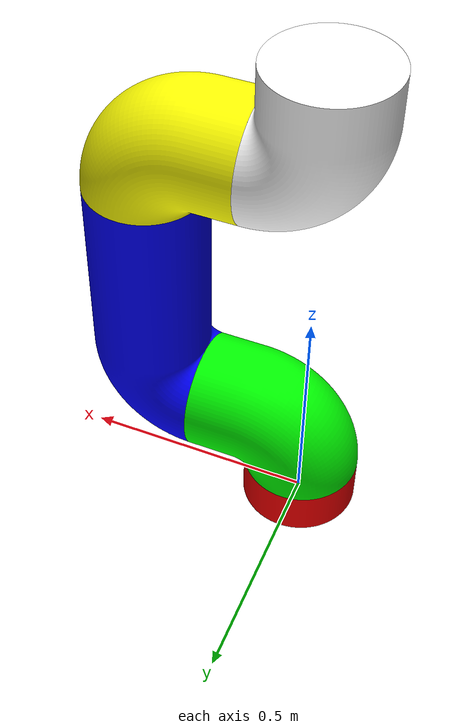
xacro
<?xml version="1.0" ?>
<robot name="URDF_Test" xmlns:xacro="http://www.ros.org/wiki/xacro">

<xacro:include filename="$(find urdf_description)/robot/materials.xacro" />
<xacro:include filename="$(find urdf_description)/robot/URDF_Test.trans" />
<xacro:include filename="$(find urdf_description)/robot/URDF_Test.gazebo" />

<link name='world'>
</link>

<link name="base_link">
  <inertial>
    <origin xyz="2.964491827262478e-17 0.0 0.05000000000000002" rpy="0 0 0"/>
    <mass value="38.53359739168731"/>
    <inertia ixx="0.182633" iyy="0.182633" izz="0.301044" ixy="0.0" iyz="0.0" ixz="0.0"/>
  </inertial>
  <visual>
    <origin xyz="0 0 0" rpy="0 0 0"/>
    <geometry>
      <mesh filename="package://urdf_test_description/meshes/base_link.stl" scale="0.001 0.001 0.001"/>
    </geometry>
    <material name="red"/>
  </visual>
  <collision>
    <origin xyz="0 0 0" rpy="0 0 0"/>
    <geometry>
      <mesh filename="package://urdf_test_description/meshes/base_link.stl" scale="0.001 0.001 0.001"/>
    </geometry>
  </collision>
</link>

<link name="limb1_1">
  <inertial>
    <origin xyz="0.07596584270604206 0.0 0.10808604564797245" rpy="0 0 0"/>
    <mass value="114.19413894300712"/>
    <inertia ixx="0.899018" iyy="1.341251" izz="1.334375" ixy="-0.0" iyz="0.0" ixz="-0.18752"/>
  </inertial>
  <visual>
    <origin xyz="-0.0 -0.0 -0.1" rpy="0 0 0"/>
    <geometry>
      <mesh filename="package://urdf_test_description/meshes/limb1_1.stl" scale="0.001 0.001 0.001"/>
    </geometry>
    <material name="green"/>
  </visual>
  <collision>
    <origin xyz="-0.0 -0.0 -0.1" rpy="0 0 0"/>
    <geometry>
      <mesh filename="package://urdf_test_description/meshes/limb1_1.stl" scale="0.001 0.001 0.001"/>
    </geometry>
  </collision>
</link>

<link name="limb2_1">
  <inertial>
    <origin xyz="0.11659479086873878 -1.988425662600658e-17 0.22639816644090358" rpy="0 0 0"/>
    <mass value="229.79493111806912"/>
    <inertia ixx="7.789902" iyy="7.813213" izz="1.818584" ixy="-0.0" iyz="-0.0" ixz="-0.478076"/>
  </inertial>
  <visual>
    <origin xyz="-0.225 -0.0 -0.225" rpy="0 0 0"/>
    <geometry>
      <mesh filename="package://urdf_test_description/meshes/limb2_1.stl" scale="0.001 0.001 0.001"/>
    </geometry>
    <material name="blue"/>
  </visual>
  <collision>
    <origin xyz="-0.225 -0.0 -0.225" rpy="0 0 0"/>
    <geometry>
      <mesh filename="package://urdf_test_description/meshes/limb2_1.stl" scale="0.001 0.001 0.001"/>
    </geometry>
  </collision>
</link>

<link name="limb3_1">
  <inertial>
    <origin xyz="-0.0759658427060419 8.00268984730937e-17 0.10808604564797264" rpy="0 0 0"/>
    <mass value="114.19413894300706"/>
    <inertia ixx="0.899018" iyy="1.341251" izz="1.334375" ixy="0.0" iyz="0.0" ixz="0.18752"/>
  </inertial>
  <visual>
    <origin xyz="-0.35 -0.0 -0.75" rpy="0 0 0"/>
    <geometry>
      <mesh filename="package://urdf_test_description/meshes/limb3_1.stl" scale="0.001 0.001 0.001"/>
    </geometry>
    <material name="yellow"/>
  </visual>
  <collision>
    <origin xyz="-0.35 -0.0 -0.75" rpy="0 0 0"/>
    <geometry>
      <mesh filename="package://urdf_test_description/meshes/limb3_1.stl" scale="0.001 0.001 0.001"/>
    </geometry>
  </collision>
</link>

<link name="limb4_1">
  <inertial>
    <origin xyz="-0.10808604564797243 -8.002689847309363e-17 0.07596584270604212" rpy="0 0 0"/>
    <mass value="114.19413894300716"/>
    <inertia ixx="1.334375" iyy="1.341251" izz="0.899018" ixy="0.0" iyz="0.0" ixz="0.18752"/>
  </inertial>
  <visual>
    <origin xyz="-0.125 -0.0 -0.875" rpy="0 0 0"/>
    <geometry>
      <mesh filename="package://urdf_test_description/meshes/limb4_1.stl" scale="0.001 0.001 0.001"/>
    </geometry>
    <material name="white"/>
  </visual>
  <collision>
    <origin xyz="-0.125 -0.0 -0.875" rpy="0 0 0"/>
    <geometry>
      <mesh filename="package://urdf_test_description/meshes/limb4_1.stl" scale="0.001 0.001 0.001"/>
    </geometry>
  </collision>
</link>

<joint name="base_link_to_world" type="fixed">
  <origin xyz="0.0 0.0 0.0" rpy="0 0 0"/>
  <parent link="world"/>
  <child link="base_link"/>
</joint>

<joint name="limb1_to_base_link" type="continuous">
  <origin xyz="0.0 0.0 0.1" rpy="0 0 0"/>
  <parent link="base_link"/>
  <child link="limb1_1"/>
  <axis xyz="0.0 0.0 1.0"/>
  <limit effort="40000" velocity="1.5" lower="-1.57" upper="1.57"/>
  <dynamics damping="20.0" friction="1.0"/>
</joint>

<joint name="limb2_to_limb1" type="continuous">
  <origin xyz="0.225 0.0 0.125" rpy="0 0 0"/>
  <parent link="limb1_1"/>
  <child link="limb2_1"/>
  <axis xyz="1.0 0.0 0.0"/>
  <limit effort="40000" velocity="1.5" lower="-1.57" upper="1.57"/>
  <dynamics damping="20.0" friction="1.0"/>
</joint>

<joint name="limb3_to_limb2" type="continuous">
  <origin xyz="0.125 0.0 0.525" rpy="0 0 0"/>
  <parent link="limb2_1"/>
  <child link="limb3_1"/>
  <axis xyz="0.0 0.0 1.0"/>
  <limit effort="40000" velocity="1.5" lower="-1.57" upper="1.57"/>
  <dynamics damping="20.0" friction="1.0"/>
</joint>

<joint name="limb4_to_limb3" type="continuous">
  <origin xyz="-0.225 0.0 0.125" rpy="0 0 0"/>
  <parent link="limb3_1"/>
  <child link="limb4_1"/>
  <axis xyz="-1.0 0.0 0.0"/>
  <limit effort="40000" velocity="1.5" lower="-1.57" upper="1.57"/>
  <dynamics damping="20.0" friction="1.0"/>
</joint>

</robot>

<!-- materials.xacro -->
<robot name="URDF_Test" xmlns:xacro="http://www.ros.org/wiki/xacro" >

<material name="red">
  <color rgba="1.000 0.000 0.000 1.000"/>
</material>

<material name="green">
  <color rgba="0.000 1.000 0.000 1.000"/>
</material>

<material name="blue">
  <color rgba="0.000 0.000 1.000 1.000"/>
</material>

<material name="yellow">
  <color rgba="1.000 1.000 0.000 1.000"/>
</material>

<material name="white">
  <color rgba="1.000 1.000 1.000 1.000"/>
</material>

</robot>

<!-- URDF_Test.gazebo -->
<robot name="URDF_Test" xmlns:xacro="http://www.ros.org/wiki/xacro" >

<xacro:property name="red_color" value="Gazebo/Red" />
<xacro:property name="green_color" value="Gazebo/Green" />
<xacro:property name="blue_color" value="Gazebo/Blue" />
<xacro:property name="yellow_color" value="Gazebo/Yellow" />
<xacro:property name="white_color" value="Gazebo/White" />

<gazebo>
  <plugin name="gazebo_ros_control" filename="libgazebo_ros_control.so">
    <robotNamespace>/urdf_1</robotNamespace>
    <robot_description>/urdf_1_robot_description</robot_description>
    <rosparam>/urdf_1_robot_description</rosparam>
    <robotSimType>gazebo_ros_control/DefaultRobotHWSim</robotSimType>
  </plugin>
</gazebo>

<gazebo reference="base_link">
  <material>${red_color}</material>
  <mu1>0.2</mu1>
  <mu2>0.2</mu2>
  <selfCollide>true</selfCollide>
  <gravity>true</gravity>
</gazebo>

<gazebo reference="limb1_1">
  <material>${green_color}</material>
  <mu1>0.2</mu1>
  <mu2>0.2</mu2>
  <selfCollide>true</selfCollide>
</gazebo>

<gazebo reference="limb2_1">
  <material>${blue_color}</material>
  <mu1>0.2</mu1>
  <mu2>0.2</mu2>
  <selfCollide>true</selfCollide>
</gazebo>

<gazebo reference="limb3_1">
  <material>${yellow_color}</material>
  <mu1>0.2</mu1>
  <mu2>0.2</mu2>
  <selfCollide>true</selfCollide>
</gazebo>

<gazebo reference="limb4_1">
  <material>${white_color}</material>
  <mu1>0.2</mu1>
  <mu2>0.2</mu2>
  <selfCollide>true</selfCollide>
</gazebo>

</robot>
